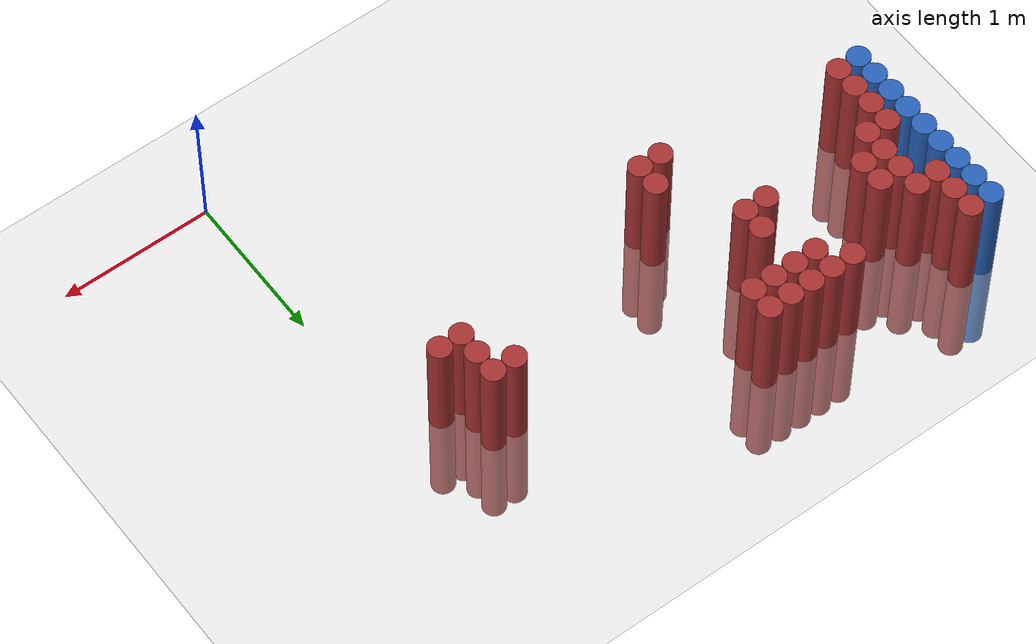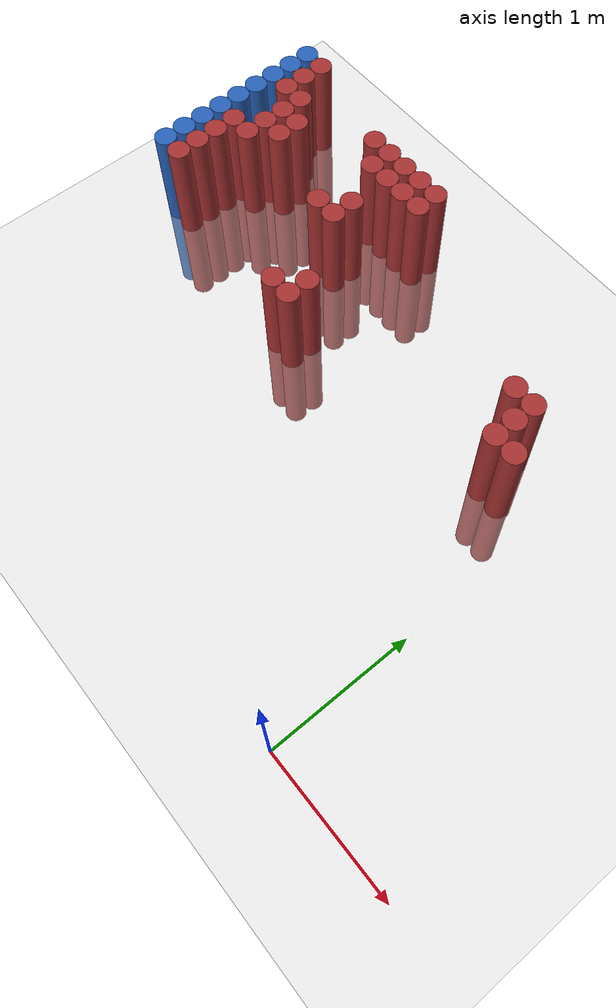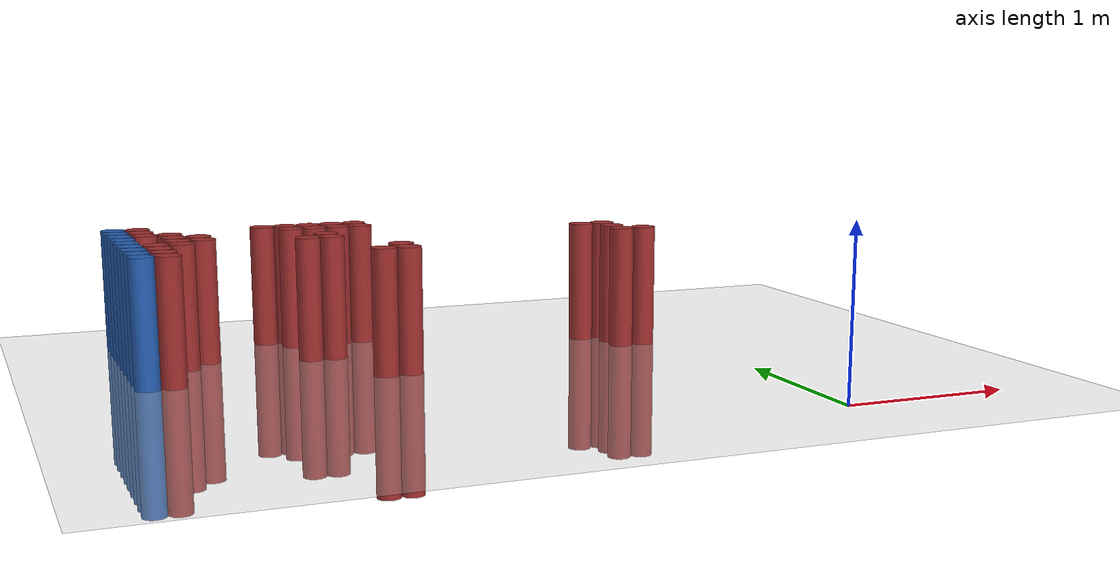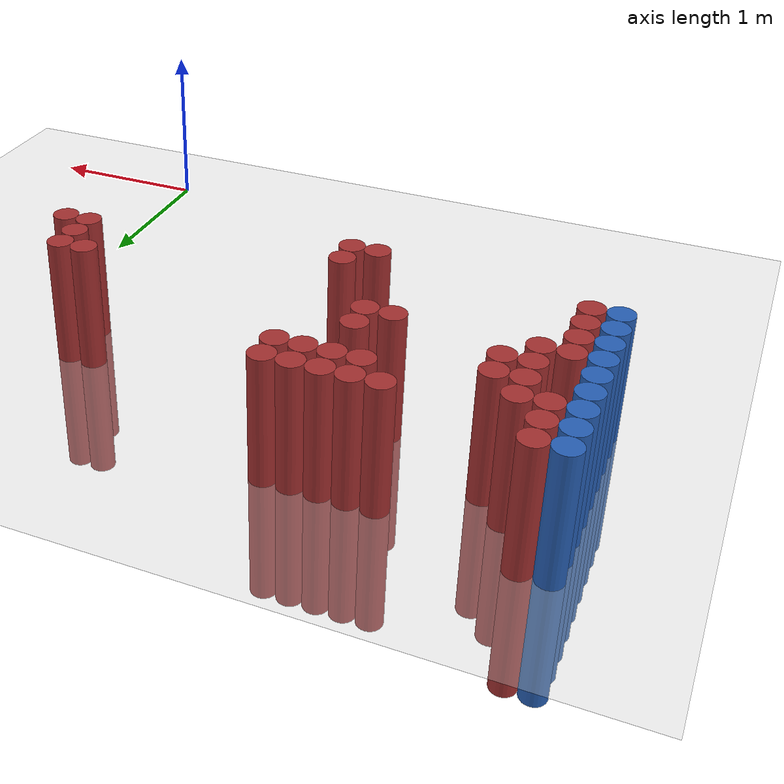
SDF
<sdf version="1.6">
 <world name="default">
  <model name="ground_plane">
   <static>1</static>
   <link name="link">
    <collision name="collision">
     <geometry><plane><normal>0 0 1</normal><size>100 100</size></plane></geometry>
     <surface><friction><ode><mu>100</mu><mu2>50</mu2></ode></friction></surface>
    </collision>
    <visual name="visual">
     <cast_shadows>0</cast_shadows>
     <geometry><plane><normal>0 0 1</normal><size>100 100</size></plane></geometry>
     <material>
      <script><uri>file://media/materials/scripts/gazebo.material</uri><name>Gazebo/Grey</name></script>
     </material>
    </visual>
   </link>
  </model>
  <model name="unit_cylinder_139">
   <static>1</static>
   <pose>-3.425000 1.825000 0.000000 0.000000 0.000000 0.000000</pose>
   <link name="link">
    <inertial>
     <mass>1</mass>
     <inertia><ixx>0.145833</ixx><ixy>0</ixy><ixz>0</ixz><iyy>0.145833</iyy><iyz>0</iyz><izz>0.125</izz></inertia>
    </inertial>
    <collision name="collision">
     <geometry><cylinder><radius>0.075000</radius><length>1.5</length></cylinder></geometry>
    </collision>
    <visual name="visual">
     <geometry><cylinder><radius>0.075000</radius><length>1.5</length></cylinder></geometry>
     <material>
      <ambient>0.152000 0.379000 0.720000 1</ambient>
      <diffuse>0.152000 0.379000 0.720000 1</diffuse>
     </material>
     <material>
      <script><name>Gazebo/Grey</name><uri>file://media/materials/scripts/gazebo.material</uri></script>
     </material>
    </visual>
   </link>
  </model>
  <model name="unit_cylinder_141">
   <static>1</static>
   <pose>-3.425000 1.975000 0.000000 0.000000 0.000000 0.000000</pose>
   <link name="link">
    <inertial>
     <mass>1</mass>
     <inertia><ixx>0.145833</ixx><ixy>0</ixy><ixz>0</ixz><iyy>0.145833</iyy><iyz>0</iyz><izz>0.125</izz></inertia>
    </inertial>
    <collision name="collision">
     <geometry><cylinder><radius>0.075000</radius><length>1.5</length></cylinder></geometry>
    </collision>
    <visual name="visual">
     <geometry><cylinder><radius>0.075000</radius><length>1.5</length></cylinder></geometry>
     <material>
      <ambient>0.152000 0.379000 0.720000 1</ambient>
      <diffuse>0.152000 0.379000 0.720000 1</diffuse>
     </material>
     <material>
      <script><name>Gazebo/Grey</name><uri>file://media/materials/scripts/gazebo.material</uri></script>
     </material>
    </visual>
   </link>
  </model>
  <model name="unit_cylinder_143">
   <static>1</static>
   <pose>-3.425000 2.125000 0.000000 0.000000 0.000000 0.000000</pose>
   <link name="link">
    <inertial>
     <mass>1</mass>
     <inertia><ixx>0.145833</ixx><ixy>0</ixy><ixz>0</ixz><iyy>0.145833</iyy><iyz>0</iyz><izz>0.125</izz></inertia>
    </inertial>
    <collision name="collision">
     <geometry><cylinder><radius>0.075000</radius><length>1.5</length></cylinder></geometry>
    </collision>
    <visual name="visual">
     <geometry><cylinder><radius>0.075000</radius><length>1.5</length></cylinder></geometry>
     <material>
      <ambient>0.152000 0.379000 0.720000 1</ambient>
      <diffuse>0.152000 0.379000 0.720000 1</diffuse>
     </material>
     <material>
      <script><name>Gazebo/Grey</name><uri>file://media/materials/scripts/gazebo.material</uri></script>
     </material>
    </visual>
   </link>
  </model>
  <model name="unit_cylinder_145">
   <static>1</static>
   <pose>-3.425000 2.275000 0.000000 0.000000 0.000000 0.000000</pose>
   <link name="link">
    <inertial>
     <mass>1</mass>
     <inertia><ixx>0.145833</ixx><ixy>0</ixy><ixz>0</ixz><iyy>0.145833</iyy><iyz>0</iyz><izz>0.125</izz></inertia>
    </inertial>
    <collision name="collision">
     <geometry><cylinder><radius>0.075000</radius><length>1.5</length></cylinder></geometry>
    </collision>
    <visual name="visual">
     <geometry><cylinder><radius>0.075000</radius><length>1.5</length></cylinder></geometry>
     <material>
      <ambient>0.152000 0.379000 0.720000 1</ambient>
      <diffuse>0.152000 0.379000 0.720000 1</diffuse>
     </material>
     <material>
      <script><name>Gazebo/Grey</name><uri>file://media/materials/scripts/gazebo.material</uri></script>
     </material>
    </visual>
   </link>
  </model>
  <model name="unit_cylinder_147">
   <static>1</static>
   <pose>-3.425000 2.425000 0.000000 0.000000 0.000000 0.000000</pose>
   <link name="link">
    <inertial>
     <mass>1</mass>
     <inertia><ixx>0.145833</ixx><ixy>0</ixy><ixz>0</ixz><iyy>0.145833</iyy><iyz>0</iyz><izz>0.125</izz></inertia>
    </inertial>
    <collision name="collision">
     <geometry><cylinder><radius>0.075000</radius><length>1.5</length></cylinder></geometry>
    </collision>
    <visual name="visual">
     <geometry><cylinder><radius>0.075000</radius><length>1.5</length></cylinder></geometry>
     <material>
      <ambient>0.152000 0.379000 0.720000 1</ambient>
      <diffuse>0.152000 0.379000 0.720000 1</diffuse>
     </material>
     <material>
      <script><name>Gazebo/Grey</name><uri>file://media/materials/scripts/gazebo.material</uri></script>
     </material>
    </visual>
   </link>
  </model>
  <model name="unit_cylinder_149">
   <static>1</static>
   <pose>-3.425000 2.575000 0.000000 0.000000 0.000000 0.000000</pose>
   <link name="link">
    <inertial>
     <mass>1</mass>
     <inertia><ixx>0.145833</ixx><ixy>0</ixy><ixz>0</ixz><iyy>0.145833</iyy><iyz>0</iyz><izz>0.125</izz></inertia>
    </inertial>
    <collision name="collision">
     <geometry><cylinder><radius>0.075000</radius><length>1.5</length></cylinder></geometry>
    </collision>
    <visual name="visual">
     <geometry><cylinder><radius>0.075000</radius><length>1.5</length></cylinder></geometry>
     <material>
      <ambient>0.152000 0.379000 0.720000 1</ambient>
      <diffuse>0.152000 0.379000 0.720000 1</diffuse>
     </material>
     <material>
      <script><name>Gazebo/Grey</name><uri>file://media/materials/scripts/gazebo.material</uri></script>
     </material>
    </visual>
   </link>
  </model>
  <model name="unit_cylinder_151">
   <static>1</static>
   <pose>-3.425000 2.725000 0.000000 0.000000 0.000000 0.000000</pose>
   <link name="link">
    <inertial>
     <mass>1</mass>
     <inertia><ixx>0.145833</ixx><ixy>0</ixy><ixz>0</ixz><iyy>0.145833</iyy><iyz>0</iyz><izz>0.125</izz></inertia>
    </inertial>
    <collision name="collision">
     <geometry><cylinder><radius>0.075000</radius><length>1.5</length></cylinder></geometry>
    </collision>
    <visual name="visual">
     <geometry><cylinder><radius>0.075000</radius><length>1.5</length></cylinder></geometry>
     <material>
      <ambient>0.152000 0.379000 0.720000 1</ambient>
      <diffuse>0.152000 0.379000 0.720000 1</diffuse>
     </material>
     <material>
      <script><name>Gazebo/Grey</name><uri>file://media/materials/scripts/gazebo.material</uri></script>
     </material>
    </visual>
   </link>
  </model>
  <model name="unit_cylinder_153">
   <static>1</static>
   <pose>-3.425000 2.875000 0.000000 0.000000 0.000000 0.000000</pose>
   <link name="link">
    <inertial>
     <mass>1</mass>
     <inertia><ixx>0.145833</ixx><ixy>0</ixy><ixz>0</ixz><iyy>0.145833</iyy><iyz>0</iyz><izz>0.125</izz></inertia>
    </inertial>
    <collision name="collision">
     <geometry><cylinder><radius>0.075000</radius><length>1.5</length></cylinder></geometry>
    </collision>
    <visual name="visual">
     <geometry><cylinder><radius>0.075000</radius><length>1.5</length></cylinder></geometry>
     <material>
      <ambient>0.152000 0.379000 0.720000 1</ambient>
      <diffuse>0.152000 0.379000 0.720000 1</diffuse>
     </material>
     <material>
      <script><name>Gazebo/Grey</name><uri>file://media/materials/scripts/gazebo.material</uri></script>
     </material>
    </visual>
   </link>
  </model>
  <model name="unit_cylinder_155">
   <static>1</static>
   <pose>-3.425000 3.025000 0.000000 0.000000 0.000000 0.000000</pose>
   <link name="link">
    <inertial>
     <mass>1</mass>
     <inertia><ixx>0.145833</ixx><ixy>0</ixy><ixz>0</ixz><iyy>0.145833</iyy><iyz>0</iyz><izz>0.125</izz></inertia>
    </inertial>
    <collision name="collision">
     <geometry><cylinder><radius>0.075000</radius><length>1.5</length></cylinder></geometry>
    </collision>
    <visual name="visual">
     <geometry><cylinder><radius>0.075000</radius><length>1.5</length></cylinder></geometry>
     <material>
      <ambient>0.152000 0.379000 0.720000 1</ambient>
      <diffuse>0.152000 0.379000 0.720000 1</diffuse>
     </material>
     <material>
      <script><name>Gazebo/Grey</name><uri>file://media/materials/scripts/gazebo.material</uri></script>
     </material>
    </visual>
   </link>
  </model>
  <model name="unit_cylinder_233">
   <static>1</static>
   <pose>-3.425000 1.825000 0.000000 0.000000 0.000000 0.000000</pose>
   <link name="link">
    <inertial>
     <mass>1</mass>
     <inertia><ixx>0.145833</ixx><ixy>0</ixy><ixz>0</ixz><iyy>0.145833</iyy><iyz>0</iyz><izz>0.125</izz></inertia>
    </inertial>
    <collision name="collision">
     <geometry><cylinder><radius>0.075000</radius><length>1.5</length></cylinder></geometry>
    </collision>
    <visual name="visual">
     <geometry><cylinder><radius>0.075000</radius><length>1.5</length></cylinder></geometry>
     <material>
      <ambient>0.152000 0.379000 0.720000 1</ambient>
      <diffuse>0.152000 0.379000 0.720000 1</diffuse>
     </material>
     <material>
      <script><name>Gazebo/Grey</name><uri>file://media/materials/scripts/gazebo.material</uri></script>
     </material>
    </visual>
   </link>
  </model>
  <model name="unit_cylinder_234">
   <static>1</static>
   <pose>-3.425000 1.975000 0.000000 0.000000 0.000000 0.000000</pose>
   <link name="link">
    <inertial>
     <mass>1</mass>
     <inertia><ixx>0.145833</ixx><ixy>0</ixy><ixz>0</ixz><iyy>0.145833</iyy><iyz>0</iyz><izz>0.125</izz></inertia>
    </inertial>
    <collision name="collision">
     <geometry><cylinder><radius>0.075000</radius><length>1.5</length></cylinder></geometry>
    </collision>
    <visual name="visual">
     <geometry><cylinder><radius>0.075000</radius><length>1.5</length></cylinder></geometry>
     <material>
      <ambient>0.152000 0.379000 0.720000 1</ambient>
      <diffuse>0.152000 0.379000 0.720000 1</diffuse>
     </material>
     <material>
      <script><name>Gazebo/Grey</name><uri>file://media/materials/scripts/gazebo.material</uri></script>
     </material>
    </visual>
   </link>
  </model>
  <model name="unit_cylinder_235">
   <static>1</static>
   <pose>-3.425000 2.125000 0.000000 0.000000 0.000000 0.000000</pose>
   <link name="link">
    <inertial>
     <mass>1</mass>
     <inertia><ixx>0.145833</ixx><ixy>0</ixy><ixz>0</ixz><iyy>0.145833</iyy><iyz>0</iyz><izz>0.125</izz></inertia>
    </inertial>
    <collision name="collision">
     <geometry><cylinder><radius>0.075000</radius><length>1.5</length></cylinder></geometry>
    </collision>
    <visual name="visual">
     <geometry><cylinder><radius>0.075000</radius><length>1.5</length></cylinder></geometry>
     <material>
      <ambient>0.152000 0.379000 0.720000 1</ambient>
      <diffuse>0.152000 0.379000 0.720000 1</diffuse>
     </material>
     <material>
      <script><name>Gazebo/Grey</name><uri>file://media/materials/scripts/gazebo.material</uri></script>
     </material>
    </visual>
   </link>
  </model>
  <model name="unit_cylinder_236">
   <static>1</static>
   <pose>-3.425000 2.275000 0.000000 0.000000 0.000000 0.000000</pose>
   <link name="link">
    <inertial>
     <mass>1</mass>
     <inertia><ixx>0.145833</ixx><ixy>0</ixy><ixz>0</ixz><iyy>0.145833</iyy><iyz>0</iyz><izz>0.125</izz></inertia>
    </inertial>
    <collision name="collision">
     <geometry><cylinder><radius>0.075000</radius><length>1.5</length></cylinder></geometry>
    </collision>
    <visual name="visual">
     <geometry><cylinder><radius>0.075000</radius><length>1.5</length></cylinder></geometry>
     <material>
      <ambient>0.152000 0.379000 0.720000 1</ambient>
      <diffuse>0.152000 0.379000 0.720000 1</diffuse>
     </material>
     <material>
      <script><name>Gazebo/Grey</name><uri>file://media/materials/scripts/gazebo.material</uri></script>
     </material>
    </visual>
   </link>
  </model>
  <model name="unit_cylinder_237">
   <static>1</static>
   <pose>-3.425000 2.425000 0.000000 0.000000 0.000000 0.000000</pose>
   <link name="link">
    <inertial>
     <mass>1</mass>
     <inertia><ixx>0.145833</ixx><ixy>0</ixy><ixz>0</ixz><iyy>0.145833</iyy><iyz>0</iyz><izz>0.125</izz></inertia>
    </inertial>
    <collision name="collision">
     <geometry><cylinder><radius>0.075000</radius><length>1.5</length></cylinder></geometry>
    </collision>
    <visual name="visual">
     <geometry><cylinder><radius>0.075000</radius><length>1.5</length></cylinder></geometry>
     <material>
      <ambient>0.152000 0.379000 0.720000 1</ambient>
      <diffuse>0.152000 0.379000 0.720000 1</diffuse>
     </material>
     <material>
      <script><name>Gazebo/Grey</name><uri>file://media/materials/scripts/gazebo.material</uri></script>
     </material>
    </visual>
   </link>
  </model>
  <model name="unit_cylinder_238">
   <static>1</static>
   <pose>-3.425000 2.575000 0.000000 0.000000 0.000000 0.000000</pose>
   <link name="link">
    <inertial>
     <mass>1</mass>
     <inertia><ixx>0.145833</ixx><ixy>0</ixy><ixz>0</ixz><iyy>0.145833</iyy><iyz>0</iyz><izz>0.125</izz></inertia>
    </inertial>
    <collision name="collision">
     <geometry><cylinder><radius>0.075000</radius><length>1.5</length></cylinder></geometry>
    </collision>
    <visual name="visual">
     <geometry><cylinder><radius>0.075000</radius><length>1.5</length></cylinder></geometry>
     <material>
      <ambient>0.152000 0.379000 0.720000 1</ambient>
      <diffuse>0.152000 0.379000 0.720000 1</diffuse>
     </material>
     <material>
      <script><name>Gazebo/Grey</name><uri>file://media/materials/scripts/gazebo.material</uri></script>
     </material>
    </visual>
   </link>
  </model>
  <model name="unit_cylinder_239">
   <static>1</static>
   <pose>-3.425000 2.725000 0.000000 0.000000 0.000000 0.000000</pose>
   <link name="link">
    <inertial>
     <mass>1</mass>
     <inertia><ixx>0.145833</ixx><ixy>0</ixy><ixz>0</ixz><iyy>0.145833</iyy><iyz>0</iyz><izz>0.125</izz></inertia>
    </inertial>
    <collision name="collision">
     <geometry><cylinder><radius>0.075000</radius><length>1.5</length></cylinder></geometry>
    </collision>
    <visual name="visual">
     <geometry><cylinder><radius>0.075000</radius><length>1.5</length></cylinder></geometry>
     <material>
      <ambient>0.152000 0.379000 0.720000 1</ambient>
      <diffuse>0.152000 0.379000 0.720000 1</diffuse>
     </material>
     <material>
      <script><name>Gazebo/Grey</name><uri>file://media/materials/scripts/gazebo.material</uri></script>
     </material>
    </visual>
   </link>
  </model>
  <model name="unit_cylinder_240">
   <static>1</static>
   <pose>-3.425000 2.875000 0.000000 0.000000 0.000000 0.000000</pose>
   <link name="link">
    <inertial>
     <mass>1</mass>
     <inertia><ixx>0.145833</ixx><ixy>0</ixy><ixz>0</ixz><iyy>0.145833</iyy><iyz>0</iyz><izz>0.125</izz></inertia>
    </inertial>
    <collision name="collision">
     <geometry><cylinder><radius>0.075000</radius><length>1.5</length></cylinder></geometry>
    </collision>
    <visual name="visual">
     <geometry><cylinder><radius>0.075000</radius><length>1.5</length></cylinder></geometry>
     <material>
      <ambient>0.152000 0.379000 0.720000 1</ambient>
      <diffuse>0.152000 0.379000 0.720000 1</diffuse>
     </material>
     <material>
      <script><name>Gazebo/Grey</name><uri>file://media/materials/scripts/gazebo.material</uri></script>
     </material>
    </visual>
   </link>
  </model>
  <model name="unit_cylinder_241">
   <static>1</static>
   <pose>-3.425000 3.025000 0.000000 0.000000 0.000000 0.000000</pose>
   <link name="link">
    <inertial>
     <mass>1</mass>
     <inertia><ixx>0.145833</ixx><ixy>0</ixy><ixz>0</ixz><iyy>0.145833</iyy><iyz>0</iyz><izz>0.125</izz></inertia>
    </inertial>
    <collision name="collision">
     <geometry><cylinder><radius>0.075000</radius><length>1.5</length></cylinder></geometry>
    </collision>
    <visual name="visual">
     <geometry><cylinder><radius>0.075000</radius><length>1.5</length></cylinder></geometry>
     <material>
      <ambient>0.152000 0.379000 0.720000 1</ambient>
      <diffuse>0.152000 0.379000 0.720000 1</diffuse>
     </material>
     <material>
      <script><name>Gazebo/Grey</name><uri>file://media/materials/scripts/gazebo.material</uri></script>
     </material>
    </visual>
   </link>
  </model>
  <model name="unit_cylinder_272">
   <static>1</static>
   <pose>-3.275000 1.825000 0.000000 0.000000 0.000000 0.000000</pose>
   <link name="link">
    <inertial>
     <mass>1</mass>
     <inertia><ixx>0.145833</ixx><ixy>0</ixy><ixz>0</ixz><iyy>0.145833</iyy><iyz>0</iyz><izz>0.125</izz></inertia>
    </inertial>
    <collision name="collision">
     <geometry><cylinder><radius>0.075000</radius><length>1.5</length></cylinder></geometry>
    </collision>
    <visual name="visual">
     <geometry><cylinder><radius>0.075000</radius><length>1.5</length></cylinder></geometry>
     <material>
      <ambient>0.648000 0.192000 0.192000 1</ambient>
      <diffuse>0.648000 0.192000 0.192000 1</diffuse>
     </material>
     <material>
      <script><name>Gazebo/Grey</name><uri>file://media/materials/scripts/gazebo.material</uri></script>
     </material>
    </visual>
   </link>
  </model>
  <model name="unit_cylinder_273">
   <static>1</static>
   <pose>-3.275000 1.975000 0.000000 0.000000 0.000000 0.000000</pose>
   <link name="link">
    <inertial>
     <mass>1</mass>
     <inertia><ixx>0.145833</ixx><ixy>0</ixy><ixz>0</ixz><iyy>0.145833</iyy><iyz>0</iyz><izz>0.125</izz></inertia>
    </inertial>
    <collision name="collision">
     <geometry><cylinder><radius>0.075000</radius><length>1.5</length></cylinder></geometry>
    </collision>
    <visual name="visual">
     <geometry><cylinder><radius>0.075000</radius><length>1.5</length></cylinder></geometry>
     <material>
      <ambient>0.648000 0.192000 0.192000 1</ambient>
      <diffuse>0.648000 0.192000 0.192000 1</diffuse>
     </material>
     <material>
      <script><name>Gazebo/Grey</name><uri>file://media/materials/scripts/gazebo.material</uri></script>
     </material>
    </visual>
   </link>
  </model>
  <model name="unit_cylinder_274">
   <static>1</static>
   <pose>-3.275000 2.125000 0.000000 0.000000 0.000000 0.000000</pose>
   <link name="link">
    <inertial>
     <mass>1</mass>
     <inertia><ixx>0.145833</ixx><ixy>0</ixy><ixz>0</ixz><iyy>0.145833</iyy><iyz>0</iyz><izz>0.125</izz></inertia>
    </inertial>
    <collision name="collision">
     <geometry><cylinder><radius>0.075000</radius><length>1.5</length></cylinder></geometry>
    </collision>
    <visual name="visual">
     <geometry><cylinder><radius>0.075000</radius><length>1.5</length></cylinder></geometry>
     <material>
      <ambient>0.648000 0.192000 0.192000 1</ambient>
      <diffuse>0.648000 0.192000 0.192000 1</diffuse>
     </material>
     <material>
      <script><name>Gazebo/Grey</name><uri>file://media/materials/scripts/gazebo.material</uri></script>
     </material>
    </visual>
   </link>
  </model>
  <model name="unit_cylinder_275">
   <static>1</static>
   <pose>-3.275000 2.275000 0.000000 0.000000 0.000000 0.000000</pose>
   <link name="link">
    <inertial>
     <mass>1</mass>
     <inertia><ixx>0.145833</ixx><ixy>0</ixy><ixz>0</ixz><iyy>0.145833</iyy><iyz>0</iyz><izz>0.125</izz></inertia>
    </inertial>
    <collision name="collision">
     <geometry><cylinder><radius>0.075000</radius><length>1.5</length></cylinder></geometry>
    </collision>
    <visual name="visual">
     <geometry><cylinder><radius>0.075000</radius><length>1.5</length></cylinder></geometry>
     <material>
      <ambient>0.648000 0.192000 0.192000 1</ambient>
      <diffuse>0.648000 0.192000 0.192000 1</diffuse>
     </material>
     <material>
      <script><name>Gazebo/Grey</name><uri>file://media/materials/scripts/gazebo.material</uri></script>
     </material>
    </visual>
   </link>
  </model>
  <model name="unit_cylinder_276">
   <static>1</static>
   <pose>-3.275000 2.725000 0.000000 0.000000 0.000000 0.000000</pose>
   <link name="link">
    <inertial>
     <mass>1</mass>
     <inertia><ixx>0.145833</ixx><ixy>0</ixy><ixz>0</ixz><iyy>0.145833</iyy><iyz>0</iyz><izz>0.125</izz></inertia>
    </inertial>
    <collision name="collision">
     <geometry><cylinder><radius>0.075000</radius><length>1.5</length></cylinder></geometry>
    </collision>
    <visual name="visual">
     <geometry><cylinder><radius>0.075000</radius><length>1.5</length></cylinder></geometry>
     <material>
      <ambient>0.648000 0.192000 0.192000 1</ambient>
      <diffuse>0.648000 0.192000 0.192000 1</diffuse>
     </material>
     <material>
      <script><name>Gazebo/Grey</name><uri>file://media/materials/scripts/gazebo.material</uri></script>
     </material>
    </visual>
   </link>
  </model>
  <model name="unit_cylinder_277">
   <static>1</static>
   <pose>-3.275000 2.875000 0.000000 0.000000 0.000000 0.000000</pose>
   <link name="link">
    <inertial>
     <mass>1</mass>
     <inertia><ixx>0.145833</ixx><ixy>0</ixy><ixz>0</ixz><iyy>0.145833</iyy><iyz>0</iyz><izz>0.125</izz></inertia>
    </inertial>
    <collision name="collision">
     <geometry><cylinder><radius>0.075000</radius><length>1.5</length></cylinder></geometry>
    </collision>
    <visual name="visual">
     <geometry><cylinder><radius>0.075000</radius><length>1.5</length></cylinder></geometry>
     <material>
      <ambient>0.648000 0.192000 0.192000 1</ambient>
      <diffuse>0.648000 0.192000 0.192000 1</diffuse>
     </material>
     <material>
      <script><name>Gazebo/Grey</name><uri>file://media/materials/scripts/gazebo.material</uri></script>
     </material>
    </visual>
   </link>
  </model>
  <model name="unit_cylinder_278">
   <static>1</static>
   <pose>-3.275000 3.025000 0.000000 0.000000 0.000000 0.000000</pose>
   <link name="link">
    <inertial>
     <mass>1</mass>
     <inertia><ixx>0.145833</ixx><ixy>0</ixy><ixz>0</ixz><iyy>0.145833</iyy><iyz>0</iyz><izz>0.125</izz></inertia>
    </inertial>
    <collision name="collision">
     <geometry><cylinder><radius>0.075000</radius><length>1.5</length></cylinder></geometry>
    </collision>
    <visual name="visual">
     <geometry><cylinder><radius>0.075000</radius><length>1.5</length></cylinder></geometry>
     <material>
      <ambient>0.648000 0.192000 0.192000 1</ambient>
      <diffuse>0.648000 0.192000 0.192000 1</diffuse>
     </material>
     <material>
      <script><name>Gazebo/Grey</name><uri>file://media/materials/scripts/gazebo.material</uri></script>
     </material>
    </visual>
   </link>
  </model>
  <model name="unit_cylinder_290">
   <static>1</static>
   <pose>-3.125000 2.275000 0.000000 0.000000 0.000000 0.000000</pose>
   <link name="link">
    <inertial>
     <mass>1</mass>
     <inertia><ixx>0.145833</ixx><ixy>0</ixy><ixz>0</ixz><iyy>0.145833</iyy><iyz>0</iyz><izz>0.125</izz></inertia>
    </inertial>
    <collision name="collision">
     <geometry><cylinder><radius>0.075000</radius><length>1.5</length></cylinder></geometry>
    </collision>
    <visual name="visual">
     <geometry><cylinder><radius>0.075000</radius><length>1.5</length></cylinder></geometry>
     <material>
      <ambient>0.648000 0.192000 0.192000 1</ambient>
      <diffuse>0.648000 0.192000 0.192000 1</diffuse>
     </material>
     <material>
      <script><name>Gazebo/Grey</name><uri>file://media/materials/scripts/gazebo.material</uri></script>
     </material>
    </visual>
   </link>
  </model>
  <model name="unit_cylinder_291">
   <static>1</static>
   <pose>-3.125000 2.425000 0.000000 0.000000 0.000000 0.000000</pose>
   <link name="link">
    <inertial>
     <mass>1</mass>
     <inertia><ixx>0.145833</ixx><ixy>0</ixy><ixz>0</ixz><iyy>0.145833</iyy><iyz>0</iyz><izz>0.125</izz></inertia>
    </inertial>
    <collision name="collision">
     <geometry><cylinder><radius>0.075000</radius><length>1.5</length></cylinder></geometry>
    </collision>
    <visual name="visual">
     <geometry><cylinder><radius>0.075000</radius><length>1.5</length></cylinder></geometry>
     <material>
      <ambient>0.648000 0.192000 0.192000 1</ambient>
      <diffuse>0.648000 0.192000 0.192000 1</diffuse>
     </material>
     <material>
      <script><name>Gazebo/Grey</name><uri>file://media/materials/scripts/gazebo.material</uri></script>
     </material>
    </visual>
   </link>
  </model>
  <model name="unit_cylinder_292">
   <static>1</static>
   <pose>-3.125000 2.575000 0.000000 0.000000 0.000000 0.000000</pose>
   <link name="link">
    <inertial>
     <mass>1</mass>
     <inertia><ixx>0.145833</ixx><ixy>0</ixy><ixz>0</ixz><iyy>0.145833</iyy><iyz>0</iyz><izz>0.125</izz></inertia>
    </inertial>
    <collision name="collision">
     <geometry><cylinder><radius>0.075000</radius><length>1.5</length></cylinder></geometry>
    </collision>
    <visual name="visual">
     <geometry><cylinder><radius>0.075000</radius><length>1.5</length></cylinder></geometry>
     <material>
      <ambient>0.648000 0.192000 0.192000 1</ambient>
      <diffuse>0.648000 0.192000 0.192000 1</diffuse>
     </material>
     <material>
      <script><name>Gazebo/Grey</name><uri>file://media/materials/scripts/gazebo.material</uri></script>
     </material>
    </visual>
   </link>
  </model>
  <model name="unit_cylinder_293">
   <static>1</static>
   <pose>-3.125000 2.725000 0.000000 0.000000 0.000000 0.000000</pose>
   <link name="link">
    <inertial>
     <mass>1</mass>
     <inertia><ixx>0.145833</ixx><ixy>0</ixy><ixz>0</ixz><iyy>0.145833</iyy><iyz>0</iyz><izz>0.125</izz></inertia>
    </inertial>
    <collision name="collision">
     <geometry><cylinder><radius>0.075000</radius><length>1.5</length></cylinder></geometry>
    </collision>
    <visual name="visual">
     <geometry><cylinder><radius>0.075000</radius><length>1.5</length></cylinder></geometry>
     <material>
      <ambient>0.648000 0.192000 0.192000 1</ambient>
      <diffuse>0.648000 0.192000 0.192000 1</diffuse>
     </material>
     <material>
      <script><name>Gazebo/Grey</name><uri>file://media/materials/scripts/gazebo.material</uri></script>
     </material>
    </visual>
   </link>
  </model>
  <model name="unit_cylinder_302">
   <static>1</static>
   <pose>-2.975000 2.425000 0.000000 0.000000 0.000000 0.000000</pose>
   <link name="link">
    <inertial>
     <mass>1</mass>
     <inertia><ixx>0.145833</ixx><ixy>0</ixy><ixz>0</ixz><iyy>0.145833</iyy><iyz>0</iyz><izz>0.125</izz></inertia>
    </inertial>
    <collision name="collision">
     <geometry><cylinder><radius>0.075000</radius><length>1.5</length></cylinder></geometry>
    </collision>
    <visual name="visual">
     <geometry><cylinder><radius>0.075000</radius><length>1.5</length></cylinder></geometry>
     <material>
      <ambient>0.648000 0.192000 0.192000 1</ambient>
      <diffuse>0.648000 0.192000 0.192000 1</diffuse>
     </material>
     <material>
      <script><name>Gazebo/Grey</name><uri>file://media/materials/scripts/gazebo.material</uri></script>
     </material>
    </visual>
   </link>
  </model>
  <model name="unit_cylinder_303">
   <static>1</static>
   <pose>-2.975000 2.575000 0.000000 0.000000 0.000000 0.000000</pose>
   <link name="link">
    <inertial>
     <mass>1</mass>
     <inertia><ixx>0.145833</ixx><ixy>0</ixy><ixz>0</ixz><iyy>0.145833</iyy><iyz>0</iyz><izz>0.125</izz></inertia>
    </inertial>
    <collision name="collision">
     <geometry><cylinder><radius>0.075000</radius><length>1.5</length></cylinder></geometry>
    </collision>
    <visual name="visual">
     <geometry><cylinder><radius>0.075000</radius><length>1.5</length></cylinder></geometry>
     <material>
      <ambient>0.648000 0.192000 0.192000 1</ambient>
      <diffuse>0.648000 0.192000 0.192000 1</diffuse>
     </material>
     <material>
      <script><name>Gazebo/Grey</name><uri>file://media/materials/scripts/gazebo.material</uri></script>
     </material>
    </visual>
   </link>
  </model>
  <model name="unit_cylinder_312">
   <static>1</static>
   <pose>-2.525000 2.875000 0.000000 0.000000 0.000000 0.000000</pose>
   <link name="link">
    <inertial>
     <mass>1</mass>
     <inertia><ixx>0.145833</ixx><ixy>0</ixy><ixz>0</ixz><iyy>0.145833</iyy><iyz>0</iyz><izz>0.125</izz></inertia>
    </inertial>
    <collision name="collision">
     <geometry><cylinder><radius>0.075000</radius><length>1.5</length></cylinder></geometry>
    </collision>
    <visual name="visual">
     <geometry><cylinder><radius>0.075000</radius><length>1.5</length></cylinder></geometry>
     <material>
      <ambient>0.648000 0.192000 0.192000 1</ambient>
      <diffuse>0.648000 0.192000 0.192000 1</diffuse>
     </material>
     <material>
      <script><name>Gazebo/Grey</name><uri>file://media/materials/scripts/gazebo.material</uri></script>
     </material>
    </visual>
   </link>
  </model>
  <model name="unit_cylinder_317">
   <static>1</static>
   <pose>-2.375000 2.275000 0.000000 0.000000 0.000000 0.000000</pose>
   <link name="link">
    <inertial>
     <mass>1</mass>
     <inertia><ixx>0.145833</ixx><ixy>0</ixy><ixz>0</ixz><iyy>0.145833</iyy><iyz>0</iyz><izz>0.125</izz></inertia>
    </inertial>
    <collision name="collision">
     <geometry><cylinder><radius>0.075000</radius><length>1.5</length></cylinder></geometry>
    </collision>
    <visual name="visual">
     <geometry><cylinder><radius>0.075000</radius><length>1.5</length></cylinder></geometry>
     <material>
      <ambient>0.648000 0.192000 0.192000 1</ambient>
      <diffuse>0.648000 0.192000 0.192000 1</diffuse>
     </material>
     <material>
      <script><name>Gazebo/Grey</name><uri>file://media/materials/scripts/gazebo.material</uri></script>
     </material>
    </visual>
   </link>
  </model>
  <model name="unit_cylinder_318">
   <static>1</static>
   <pose>-2.375000 2.725000 0.000000 0.000000 0.000000 0.000000</pose>
   <link name="link">
    <inertial>
     <mass>1</mass>
     <inertia><ixx>0.145833</ixx><ixy>0</ixy><ixz>0</ixz><iyy>0.145833</iyy><iyz>0</iyz><izz>0.125</izz></inertia>
    </inertial>
    <collision name="collision">
     <geometry><cylinder><radius>0.075000</radius><length>1.5</length></cylinder></geometry>
    </collision>
    <visual name="visual">
     <geometry><cylinder><radius>0.075000</radius><length>1.5</length></cylinder></geometry>
     <material>
      <ambient>0.648000 0.192000 0.192000 1</ambient>
      <diffuse>0.648000 0.192000 0.192000 1</diffuse>
     </material>
     <material>
      <script><name>Gazebo/Grey</name><uri>file://media/materials/scripts/gazebo.material</uri></script>
     </material>
    </visual>
   </link>
  </model>
  <model name="unit_cylinder_319">
   <static>1</static>
   <pose>-2.375000 2.875000 0.000000 0.000000 0.000000 0.000000</pose>
   <link name="link">
    <inertial>
     <mass>1</mass>
     <inertia><ixx>0.145833</ixx><ixy>0</ixy><ixz>0</ixz><iyy>0.145833</iyy><iyz>0</iyz><izz>0.125</izz></inertia>
    </inertial>
    <collision name="collision">
     <geometry><cylinder><radius>0.075000</radius><length>1.5</length></cylinder></geometry>
    </collision>
    <visual name="visual">
     <geometry><cylinder><radius>0.075000</radius><length>1.5</length></cylinder></geometry>
     <material>
      <ambient>0.648000 0.192000 0.192000 1</ambient>
      <diffuse>0.648000 0.192000 0.192000 1</diffuse>
     </material>
     <material>
      <script><name>Gazebo/Grey</name><uri>file://media/materials/scripts/gazebo.material</uri></script>
     </material>
    </visual>
   </link>
  </model>
  <model name="unit_cylinder_331">
   <static>1</static>
   <pose>-2.225000 2.275000 0.000000 0.000000 0.000000 0.000000</pose>
   <link name="link">
    <inertial>
     <mass>1</mass>
     <inertia><ixx>0.145833</ixx><ixy>0</ixy><ixz>0</ixz><iyy>0.145833</iyy><iyz>0</iyz><izz>0.125</izz></inertia>
    </inertial>
    <collision name="collision">
     <geometry><cylinder><radius>0.075000</radius><length>1.5</length></cylinder></geometry>
    </collision>
    <visual name="visual">
     <geometry><cylinder><radius>0.075000</radius><length>1.5</length></cylinder></geometry>
     <material>
      <ambient>0.648000 0.192000 0.192000 1</ambient>
      <diffuse>0.648000 0.192000 0.192000 1</diffuse>
     </material>
     <material>
      <script><name>Gazebo/Grey</name><uri>file://media/materials/scripts/gazebo.material</uri></script>
     </material>
    </visual>
   </link>
  </model>
  <model name="unit_cylinder_332">
   <static>1</static>
   <pose>-2.225000 2.425000 0.000000 0.000000 0.000000 0.000000</pose>
   <link name="link">
    <inertial>
     <mass>1</mass>
     <inertia><ixx>0.145833</ixx><ixy>0</ixy><ixz>0</ixz><iyy>0.145833</iyy><iyz>0</iyz><izz>0.125</izz></inertia>
    </inertial>
    <collision name="collision">
     <geometry><cylinder><radius>0.075000</radius><length>1.5</length></cylinder></geometry>
    </collision>
    <visual name="visual">
     <geometry><cylinder><radius>0.075000</radius><length>1.5</length></cylinder></geometry>
     <material>
      <ambient>0.648000 0.192000 0.192000 1</ambient>
      <diffuse>0.648000 0.192000 0.192000 1</diffuse>
     </material>
     <material>
      <script><name>Gazebo/Grey</name><uri>file://media/materials/scripts/gazebo.material</uri></script>
     </material>
    </visual>
   </link>
  </model>
  <model name="unit_cylinder_333">
   <static>1</static>
   <pose>-2.225000 2.725000 0.000000 0.000000 0.000000 0.000000</pose>
   <link name="link">
    <inertial>
     <mass>1</mass>
     <inertia><ixx>0.145833</ixx><ixy>0</ixy><ixz>0</ixz><iyy>0.145833</iyy><iyz>0</iyz><izz>0.125</izz></inertia>
    </inertial>
    <collision name="collision">
     <geometry><cylinder><radius>0.075000</radius><length>1.5</length></cylinder></geometry>
    </collision>
    <visual name="visual">
     <geometry><cylinder><radius>0.075000</radius><length>1.5</length></cylinder></geometry>
     <material>
      <ambient>0.648000 0.192000 0.192000 1</ambient>
      <diffuse>0.648000 0.192000 0.192000 1</diffuse>
     </material>
     <material>
      <script><name>Gazebo/Grey</name><uri>file://media/materials/scripts/gazebo.material</uri></script>
     </material>
    </visual>
   </link>
  </model>
  <model name="unit_cylinder_334">
   <static>1</static>
   <pose>-2.225000 2.875000 0.000000 0.000000 0.000000 0.000000</pose>
   <link name="link">
    <inertial>
     <mass>1</mass>
     <inertia><ixx>0.145833</ixx><ixy>0</ixy><ixz>0</ixz><iyy>0.145833</iyy><iyz>0</iyz><izz>0.125</izz></inertia>
    </inertial>
    <collision name="collision">
     <geometry><cylinder><radius>0.075000</radius><length>1.5</length></cylinder></geometry>
    </collision>
    <visual name="visual">
     <geometry><cylinder><radius>0.075000</radius><length>1.5</length></cylinder></geometry>
     <material>
      <ambient>0.648000 0.192000 0.192000 1</ambient>
      <diffuse>0.648000 0.192000 0.192000 1</diffuse>
     </material>
     <material>
      <script><name>Gazebo/Grey</name><uri>file://media/materials/scripts/gazebo.material</uri></script>
     </material>
    </visual>
   </link>
  </model>
  <model name="unit_cylinder_339">
   <static>1</static>
   <pose>-2.075000 1.675000 0.000000 0.000000 0.000000 0.000000</pose>
   <link name="link">
    <inertial>
     <mass>1</mass>
     <inertia><ixx>0.145833</ixx><ixy>0</ixy><ixz>0</ixz><iyy>0.145833</iyy><iyz>0</iyz><izz>0.125</izz></inertia>
    </inertial>
    <collision name="collision">
     <geometry><cylinder><radius>0.075000</radius><length>1.5</length></cylinder></geometry>
    </collision>
    <visual name="visual">
     <geometry><cylinder><radius>0.075000</radius><length>1.5</length></cylinder></geometry>
     <material>
      <ambient>0.648000 0.192000 0.192000 1</ambient>
      <diffuse>0.648000 0.192000 0.192000 1</diffuse>
     </material>
     <material>
      <script><name>Gazebo/Grey</name><uri>file://media/materials/scripts/gazebo.material</uri></script>
     </material>
    </visual>
   </link>
  </model>
  <model name="unit_cylinder_340">
   <static>1</static>
   <pose>-2.075000 2.725000 0.000000 0.000000 0.000000 0.000000</pose>
   <link name="link">
    <inertial>
     <mass>1</mass>
     <inertia><ixx>0.145833</ixx><ixy>0</ixy><ixz>0</ixz><iyy>0.145833</iyy><iyz>0</iyz><izz>0.125</izz></inertia>
    </inertial>
    <collision name="collision">
     <geometry><cylinder><radius>0.075000</radius><length>1.5</length></cylinder></geometry>
    </collision>
    <visual name="visual">
     <geometry><cylinder><radius>0.075000</radius><length>1.5</length></cylinder></geometry>
     <material>
      <ambient>0.648000 0.192000 0.192000 1</ambient>
      <diffuse>0.648000 0.192000 0.192000 1</diffuse>
     </material>
     <material>
      <script><name>Gazebo/Grey</name><uri>file://media/materials/scripts/gazebo.material</uri></script>
     </material>
    </visual>
   </link>
  </model>
  <model name="unit_cylinder_341">
   <static>1</static>
   <pose>-2.075000 2.875000 0.000000 0.000000 0.000000 0.000000</pose>
   <link name="link">
    <inertial>
     <mass>1</mass>
     <inertia><ixx>0.145833</ixx><ixy>0</ixy><ixz>0</ixz><iyy>0.145833</iyy><iyz>0</iyz><izz>0.125</izz></inertia>
    </inertial>
    <collision name="collision">
     <geometry><cylinder><radius>0.075000</radius><length>1.5</length></cylinder></geometry>
    </collision>
    <visual name="visual">
     <geometry><cylinder><radius>0.075000</radius><length>1.5</length></cylinder></geometry>
     <material>
      <ambient>0.648000 0.192000 0.192000 1</ambient>
      <diffuse>0.648000 0.192000 0.192000 1</diffuse>
     </material>
     <material>
      <script><name>Gazebo/Grey</name><uri>file://media/materials/scripts/gazebo.material</uri></script>
     </material>
    </visual>
   </link>
  </model>
  <model name="unit_cylinder_350">
   <static>1</static>
   <pose>-1.925000 1.675000 0.000000 0.000000 0.000000 0.000000</pose>
   <link name="link">
    <inertial>
     <mass>1</mass>
     <inertia><ixx>0.145833</ixx><ixy>0</ixy><ixz>0</ixz><iyy>0.145833</iyy><iyz>0</iyz><izz>0.125</izz></inertia>
    </inertial>
    <collision name="collision">
     <geometry><cylinder><radius>0.075000</radius><length>1.5</length></cylinder></geometry>
    </collision>
    <visual name="visual">
     <geometry><cylinder><radius>0.075000</radius><length>1.5</length></cylinder></geometry>
     <material>
      <ambient>0.648000 0.192000 0.192000 1</ambient>
      <diffuse>0.648000 0.192000 0.192000 1</diffuse>
     </material>
     <material>
      <script><name>Gazebo/Grey</name><uri>file://media/materials/scripts/gazebo.material</uri></script>
     </material>
    </visual>
   </link>
  </model>
  <model name="unit_cylinder_351">
   <static>1</static>
   <pose>-1.925000 1.825000 0.000000 0.000000 0.000000 0.000000</pose>
   <link name="link">
    <inertial>
     <mass>1</mass>
     <inertia><ixx>0.145833</ixx><ixy>0</ixy><ixz>0</ixz><iyy>0.145833</iyy><iyz>0</iyz><izz>0.125</izz></inertia>
    </inertial>
    <collision name="collision">
     <geometry><cylinder><radius>0.075000</radius><length>1.5</length></cylinder></geometry>
    </collision>
    <visual name="visual">
     <geometry><cylinder><radius>0.075000</radius><length>1.5</length></cylinder></geometry>
     <material>
      <ambient>0.648000 0.192000 0.192000 1</ambient>
      <diffuse>0.648000 0.192000 0.192000 1</diffuse>
     </material>
     <material>
      <script><name>Gazebo/Grey</name><uri>file://media/materials/scripts/gazebo.material</uri></script>
     </material>
    </visual>
   </link>
  </model>
  <model name="unit_cylinder_352">
   <static>1</static>
   <pose>-1.925000 2.725000 0.000000 0.000000 0.000000 0.000000</pose>
   <link name="link">
    <inertial>
     <mass>1</mass>
     <inertia><ixx>0.145833</ixx><ixy>0</ixy><ixz>0</ixz><iyy>0.145833</iyy><iyz>0</iyz><izz>0.125</izz></inertia>
    </inertial>
    <collision name="collision">
     <geometry><cylinder><radius>0.075000</radius><length>1.5</length></cylinder></geometry>
    </collision>
    <visual name="visual">
     <geometry><cylinder><radius>0.075000</radius><length>1.5</length></cylinder></geometry>
     <material>
      <ambient>0.648000 0.192000 0.192000 1</ambient>
      <diffuse>0.648000 0.192000 0.192000 1</diffuse>
     </material>
     <material>
      <script><name>Gazebo/Grey</name><uri>file://media/materials/scripts/gazebo.material</uri></script>
     </material>
    </visual>
   </link>
  </model>
  <model name="unit_cylinder_353">
   <static>1</static>
   <pose>-1.925000 2.875000 0.000000 0.000000 0.000000 0.000000</pose>
   <link name="link">
    <inertial>
     <mass>1</mass>
     <inertia><ixx>0.145833</ixx><ixy>0</ixy><ixz>0</ixz><iyy>0.145833</iyy><iyz>0</iyz><izz>0.125</izz></inertia>
    </inertial>
    <collision name="collision">
     <geometry><cylinder><radius>0.075000</radius><length>1.5</length></cylinder></geometry>
    </collision>
    <visual name="visual">
     <geometry><cylinder><radius>0.075000</radius><length>1.5</length></cylinder></geometry>
     <material>
      <ambient>0.648000 0.192000 0.192000 1</ambient>
      <diffuse>0.648000 0.192000 0.192000 1</diffuse>
     </material>
     <material>
      <script><name>Gazebo/Grey</name><uri>file://media/materials/scripts/gazebo.material</uri></script>
     </material>
    </visual>
   </link>
  </model>
  <model name="unit_cylinder_394">
   <static>1</static>
   <pose>-0.575000 2.275000 0.000000 0.000000 0.000000 0.000000</pose>
   <link name="link">
    <inertial>
     <mass>1</mass>
     <inertia><ixx>0.145833</ixx><ixy>0</ixy><ixz>0</ixz><iyy>0.145833</iyy><iyz>0</iyz><izz>0.125</izz></inertia>
    </inertial>
    <collision name="collision">
     <geometry><cylinder><radius>0.075000</radius><length>1.5</length></cylinder></geometry>
    </collision>
    <visual name="visual">
     <geometry><cylinder><radius>0.075000</radius><length>1.5</length></cylinder></geometry>
     <material>
      <ambient>0.648000 0.192000 0.192000 1</ambient>
      <diffuse>0.648000 0.192000 0.192000 1</diffuse>
     </material>
     <material>
      <script><name>Gazebo/Grey</name><uri>file://media/materials/scripts/gazebo.material</uri></script>
     </material>
    </visual>
   </link>
  </model>
  <model name="unit_cylinder_400">
   <static>1</static>
   <pose>-0.425000 1.975000 0.000000 0.000000 0.000000 0.000000</pose>
   <link name="link">
    <inertial>
     <mass>1</mass>
     <inertia><ixx>0.145833</ixx><ixy>0</ixy><ixz>0</ixz><iyy>0.145833</iyy><iyz>0</iyz><izz>0.125</izz></inertia>
    </inertial>
    <collision name="collision">
     <geometry><cylinder><radius>0.075000</radius><length>1.5</length></cylinder></geometry>
    </collision>
    <visual name="visual">
     <geometry><cylinder><radius>0.075000</radius><length>1.5</length></cylinder></geometry>
     <material>
      <ambient>0.648000 0.192000 0.192000 1</ambient>
      <diffuse>0.648000 0.192000 0.192000 1</diffuse>
     </material>
     <material>
      <script><name>Gazebo/Grey</name><uri>file://media/materials/scripts/gazebo.material</uri></script>
     </material>
    </visual>
   </link>
  </model>
  <model name="unit_cylinder_401">
   <static>1</static>
   <pose>-0.425000 2.125000 0.000000 0.000000 0.000000 0.000000</pose>
   <link name="link">
    <inertial>
     <mass>1</mass>
     <inertia><ixx>0.145833</ixx><ixy>0</ixy><ixz>0</ixz><iyy>0.145833</iyy><iyz>0</iyz><izz>0.125</izz></inertia>
    </inertial>
    <collision name="collision">
     <geometry><cylinder><radius>0.075000</radius><length>1.5</length></cylinder></geometry>
    </collision>
    <visual name="visual">
     <geometry><cylinder><radius>0.075000</radius><length>1.5</length></cylinder></geometry>
     <material>
      <ambient>0.648000 0.192000 0.192000 1</ambient>
      <diffuse>0.648000 0.192000 0.192000 1</diffuse>
     </material>
     <material>
      <script><name>Gazebo/Grey</name><uri>file://media/materials/scripts/gazebo.material</uri></script>
     </material>
    </visual>
   </link>
  </model>
  <model name="unit_cylinder_402">
   <static>1</static>
   <pose>-0.425000 2.275000 0.000000 0.000000 0.000000 0.000000</pose>
   <link name="link">
    <inertial>
     <mass>1</mass>
     <inertia><ixx>0.145833</ixx><ixy>0</ixy><ixz>0</ixz><iyy>0.145833</iyy><iyz>0</iyz><izz>0.125</izz></inertia>
    </inertial>
    <collision name="collision">
     <geometry><cylinder><radius>0.075000</radius><length>1.5</length></cylinder></geometry>
    </collision>
    <visual name="visual">
     <geometry><cylinder><radius>0.075000</radius><length>1.5</length></cylinder></geometry>
     <material>
      <ambient>0.648000 0.192000 0.192000 1</ambient>
      <diffuse>0.648000 0.192000 0.192000 1</diffuse>
     </material>
     <material>
      <script><name>Gazebo/Grey</name><uri>file://media/materials/scripts/gazebo.material</uri></script>
     </material>
    </visual>
   </link>
  </model>
  <model name="unit_cylinder_410">
   <static>1</static>
   <pose>-0.275000 1.975000 0.000000 0.000000 0.000000 0.000000</pose>
   <link name="link">
    <inertial>
     <mass>1</mass>
     <inertia><ixx>0.145833</ixx><ixy>0</ixy><ixz>0</ixz><iyy>0.145833</iyy><iyz>0</iyz><izz>0.125</izz></inertia>
    </inertial>
    <collision name="collision">
     <geometry><cylinder><radius>0.075000</radius><length>1.5</length></cylinder></geometry>
    </collision>
    <visual name="visual">
     <geometry><cylinder><radius>0.075000</radius><length>1.5</length></cylinder></geometry>
     <material>
      <ambient>0.648000 0.192000 0.192000 1</ambient>
      <diffuse>0.648000 0.192000 0.192000 1</diffuse>
     </material>
     <material>
      <script><name>Gazebo/Grey</name><uri>file://media/materials/scripts/gazebo.material</uri></script>
     </material>
    </visual>
   </link>
  </model>
 </world>
</sdf>
